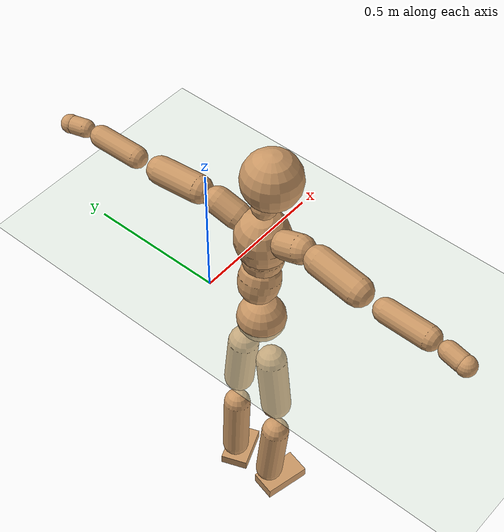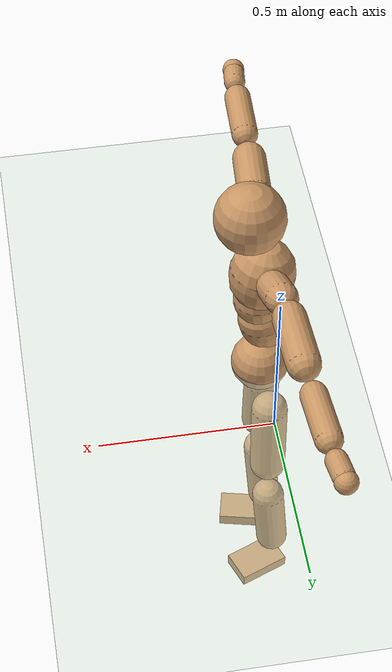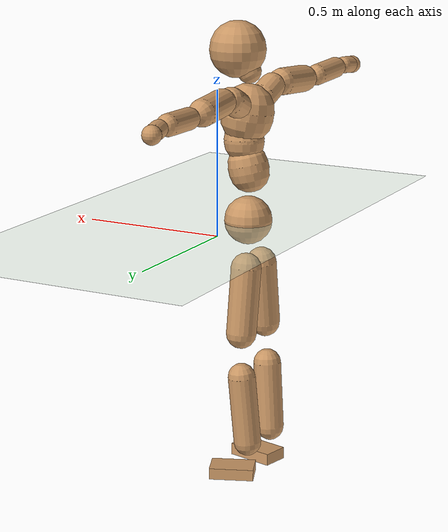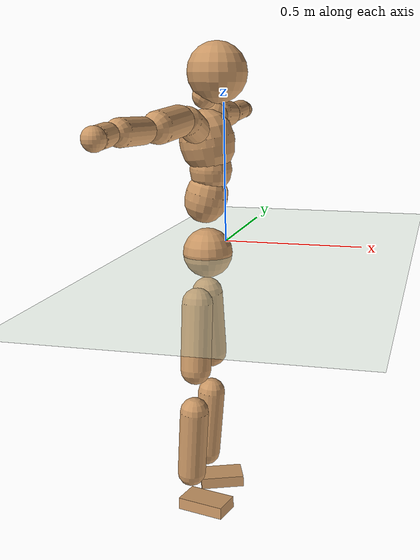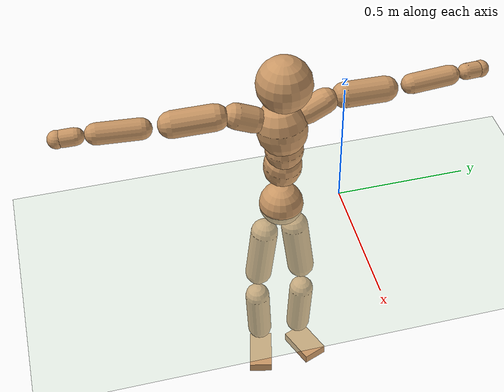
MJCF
<mujoco model="humanoid">
  <compiler coordinate="local" angle="radian"/>
  <default>
    <joint damping="0.0" armature="0.01" stiffness="0.0" limited="true"/>
    <geom conaffinity="1" condim="3" contype="7" margin="0.001" rgba="0.8 0.6 .4 1"/>
  </default>
  <asset>
    <texture type="skybox" builtin="gradient" rgb1=".4 .5 .6" rgb2="0 0 0" width="100" height="100"/>
    <texture builtin="flat" height="1278" mark="cross" markrgb="1 1 1" name="texgeom" random="0.01" rgb1="0.8 0.6 0.4" rgb2="0.8 0.6 0.4" type="cube" width="127"/>
    <texture builtin="checker" height="100" name="texplane" rgb1="0 0 0" rgb2="0.8 0.8 0.8" type="2d" width="100"/>
    <material name="MatPlane" reflectance="0.5" shininess="1" specular="1" texrepeat="60 60" texture="texplane"/>
    <material name="geom" texture="texgeom" texuniform="true"/>
  </asset>
  <worldbody>
    <light cutoff="100" diffuse="1 1 1" dir="-0 0 -1.3" directional="true" exponent="1" pos="0 0 1.3" specular=".1 .1 .1"/>
    <geom conaffinity="1" condim="3" name="floor" pos="0 0 0" rgba="0.8 0.9 0.8 1" size="100 100 .2" type="plane" material="MatPlane"/>
    <body name="Pelvis" pos="-0.0004 -0.2292 0.0064">
      <freejoint name="Pelvis"/>
      <geom type="sphere" contype="1" conaffinity="1" density="500" size="0.0848" pos="0.0000 0.0000 0.0000" name="Pelvis"/>
      <body name="L_Hip" pos="-0.0239 0.0505 -0.0798">
        <joint name="L_Hip_x" type="hinge" pos="0 0 0" axis="1 0 0" stiffness="800" damping="80" armature="0.02" range="-180.0000 180.0000"/>
        <joint name="L_Hip_y" type="hinge" pos="0 0 0" axis="0 1 0" stiffness="800" damping="80" armature="0.02" range="-180.0000 180.0000"/>
        <joint name="L_Hip_z" type="hinge" pos="0 0 0" axis="0 0 1" stiffness="800" damping="80" armature="0.02" range="-180.0000 180.0000"/>
        <geom type="capsule" contype="1" conaffinity="1" density="500" fromto="0.0015 0.0089 -0.0777 0.0058 0.0357 -0.3106" size="0.0537" name="L_Hip"/>
        <body name="L_Knee" pos="0.0073 0.0447 -0.3883">
          <joint name="L_Knee_x" type="hinge" pos="0 0 0" axis="1 0 0" stiffness="800" damping="80" armature="0.02" range="-180.0000 180.0000"/>
          <joint name="L_Knee_y" type="hinge" pos="0 0 0" axis="0 1 0" stiffness="800" damping="80" armature="0.02" range="-180.0000 180.0000"/>
          <joint name="L_Knee_z" type="hinge" pos="0 0 0" axis="0 0 1" stiffness="800" damping="80" armature="0.02" range="-180.0000 180.0000"/>
          <geom type="capsule" contype="1" conaffinity="1" density="500" fromto="-0.0068 -0.0024 -0.0811 -0.0274 -0.0096 -0.3245" size="0.0491" name="L_Knee"/>
          <body name="L_Ankle" pos="-0.0342 -0.0119 -0.4056">
            <joint name="L_Ankle_x" type="hinge" pos="0 0 0" axis="1 0 0" stiffness="800" damping="80" armature="0.02" range="-180.0000 180.0000"/>
            <joint name="L_Ankle_y" type="hinge" pos="0 0 0" axis="0 1 0" stiffness="800" damping="80" armature="0.02" range="-180.0000 180.0000"/>
            <joint name="L_Ankle_z" type="hinge" pos="0 0 0" axis="0 0 1" stiffness="800" damping="80" armature="0.02" range="-180.0000 180.0000"/>
            <geom type="box" contype="1" conaffinity="1" density="500" pos="0.0568 0.0222 -0.0288" size="0.0788 0.0503 0.0202" quat="0.9827 0.0000 0.0000 0.1854" name="L_Ankle"/>
            <body name="L_Toe" pos="0.1137 0.0445 -0.0577">
              <joint name="L_Toe_x" type="hinge" pos="0 0 0" axis="1 0 0" stiffness="500" damping="50" armature="0.02" range="-180.0000 180.0000"/>
              <joint name="L_Toe_y" type="hinge" pos="0 0 0" axis="0 1 0" stiffness="500" damping="50" armature="0.02" range="-180.0000 180.0000"/>
              <joint name="L_Toe_z" type="hinge" pos="0 0 0" axis="0 0 1" stiffness="500" damping="50" armature="0.02" range="-180.0000 180.0000"/>
              <geom type="box" contype="1" conaffinity="1" density="500" pos="0.0000 0.0000 0.0302" size="0.001 0.0024 0.0011" quat="0.9818 0.0000 0.0000 0.1899" name="L_Toe"/>
            </body>
          </body>
        </body>
      </body>
      <body name="R_Hip" pos="-0.0206 -0.0532 -0.0884">
        <joint name="R_Hip_x" type="hinge" pos="0 0 0" axis="1 0 0" stiffness="800" damping="80" armature="0.02" range="-180.0000 180.0000"/>
        <joint name="R_Hip_y" type="hinge" pos="0 0 0" axis="0 1 0" stiffness="800" damping="80" armature="0.02" range="-180.0000 180.0000"/>
        <joint name="R_Hip_z" type="hinge" pos="0 0 0" axis="0 0 1" stiffness="800" damping="80" armature="0.02" range="-180.0000 180.0000"/>
        <geom type="capsule" contype="1" conaffinity="1" density="500" fromto="-0.0008 -0.0092 -0.0764 -0.0033 -0.0367 -0.3058" size="0.0532" name="R_Hip"/>
        <body name="R_Knee" pos="-0.0041 -0.0458 -0.3822">
          <joint name="R_Knee_x" type="hinge" pos="0 0 0" axis="1 0 0" stiffness="800" damping="80" armature="0.02" range="-180.0000 180.0000"/>
          <joint name="R_Knee_y" type="hinge" pos="0 0 0" axis="0 1 0" stiffness="800" damping="80" armature="0.02" range="-180.0000 180.0000"/>
          <joint name="R_Knee_z" type="hinge" pos="0 0 0" axis="0 0 1" stiffness="800" damping="80" armature="0.02" range="-180.0000 180.0000"/>
          <geom type="capsule" contype="1" conaffinity="1" density="500" fromto="-0.0061 0.0035 -0.0800 -0.0246 0.0142 -0.3200" size="0.0498" name="R_Knee"/>
          <body name="R_Ankle" pos="-0.0307 0.0177 -0.4">
            <joint name="R_Ankle_x" type="hinge" pos="0 0 0" axis="1 0 0" stiffness="800" damping="80" armature="0.02" range="-180.0000 180.0000"/>
            <joint name="R_Ankle_y" type="hinge" pos="0 0 0" axis="0 1 0" stiffness="800" damping="80" armature="0.02" range="-180.0000 180.0000"/>
            <joint name="R_Ankle_z" type="hinge" pos="0 0 0" axis="0 0 1" stiffness="800" damping="80" armature="0.02" range="-180.0000 180.0000"/>
            <geom type="box" contype="1" conaffinity="1" density="500" pos="0.0612 -0.0142 -0.0310" size="0.0854 0.0474 0.0212" quat="0.9935 0.0000 0.0000 -0.1138" name="R_Ankle"/>
            <body name="R_Toe" pos="0.1223 -0.0284 -0.062">
              <joint name="R_Toe_x" type="hinge" pos="0 0 0" axis="1 0 0" stiffness="500" damping="50" armature="0.02" range="-180.0000 180.0000"/>
              <joint name="R_Toe_y" type="hinge" pos="0 0 0" axis="0 1 0" stiffness="500" damping="50" armature="0.02" range="-180.0000 180.0000"/>
              <joint name="R_Toe_z" type="hinge" pos="0 0 0" axis="0 0 1" stiffness="500" damping="50" armature="0.02" range="-180.0000 180.0000"/>
              <geom type="box" contype="1" conaffinity="1" density="500" pos="0.0000 0.0000 0.0331" size="0.0009 0.0023 0.0012" quat="0.9945 0.0000 0.0000 -0.1044" name="R_Toe"/>
            </body>
          </body>
        </body>
      </body>
      <body name="Torso" pos="-0.0205 0.0043 0.1185">
        <joint name="Torso_x" type="hinge" pos="0 0 0" axis="1 0 0" stiffness="1000" damping="100" armature="0.02" range="-180.0000 180.0000"/>
        <joint name="Torso_y" type="hinge" pos="0 0 0" axis="0 1 0" stiffness="1000" damping="100" armature="0.02" range="-180.0000 180.0000"/>
        <joint name="Torso_z" type="hinge" pos="0 0 0" axis="0 0 1" stiffness="1000" damping="100" armature="0.02" range="-180.0000 180.0000"/>
        <geom type="capsule" contype="1" conaffinity="1" density="500" fromto="0.0199 0.0027 0.0825 0.0133 0.0018 0.0550" size="0.0712" name="Torso"/>
        <body name="Spine" pos="0.0332 0.0045 0.1375">
          <joint name="Spine_x" type="hinge" pos="0 0 0" axis="1 0 0" stiffness="1000" damping="100" armature="0.02" range="-180.0000 180.0000"/>
          <joint name="Spine_y" type="hinge" pos="0 0 0" axis="0 1 0" stiffness="1000" damping="100" armature="0.02" range="-180.0000 180.0000"/>
          <joint name="Spine_z" type="hinge" pos="0 0 0" axis="0 0 1" stiffness="1000" damping="100" armature="0.02" range="-180.0000 180.0000"/>
          <geom type="capsule" contype="1" conaffinity="1" density="500" fromto="0.0011 -0.0014 0.0326 0.0007 -0.0010 0.0217" size="0.0707" name="Spine"/>
          <body name="Chest" pos="0.0018 -0.0024 0.0543">
            <joint name="Chest_x" type="hinge" pos="0 0 0" axis="1 0 0" stiffness="1000" damping="100" armature="0.02" range="-180.0000 180.0000"/>
            <joint name="Chest_y" type="hinge" pos="0 0 0" axis="0 1 0" stiffness="1000" damping="100" armature="0.02" range="-180.0000 180.0000"/>
            <joint name="Chest_z" type="hinge" pos="0 0 0" axis="0 0 1" stiffness="1000" damping="100" armature="0.02" range="-180.0000 180.0000"/>
            <geom type="capsule" contype="1" conaffinity="1" density="500" fromto="-0.0124 -0.0055 0.0805 -0.0083 -0.0036 0.0536" size="0.092" name="Chest"/>
            <body name="Neck" pos="-0.0233 -0.014 0.1942">
              <joint name="Neck_x" type="hinge" pos="0 0 0" axis="1 0 0" stiffness="500" damping="50" armature="0.02" range="-180.0000 180.0000"/>
              <joint name="Neck_y" type="hinge" pos="0 0 0" axis="0 1 0" stiffness="500" damping="50" armature="0.02" range="-180.0000 180.0000"/>
              <joint name="Neck_z" type="hinge" pos="0 0 0" axis="0 0 1" stiffness="500" damping="50" armature="0.02" range="-180.0000 180.0000"/>
              <geom type="capsule" contype="1" conaffinity="1" density="500" fromto="0.0103 0.0016 0.0186 0.0411 0.0065 0.0745" size="0.0422" name="Neck"/>
              <body name="Head" pos="0.0513 0.0082 0.0931">
                <joint name="Head_x" type="hinge" pos="0 0 0" axis="1 0 0" stiffness="500" damping="50" armature="0.02" range="-180.0000 180.0000"/>
                <joint name="Head_y" type="hinge" pos="0 0 0" axis="0 1 0" stiffness="500" damping="50" armature="0.02" range="-180.0000 180.0000"/>
                <joint name="Head_z" type="hinge" pos="0 0 0" axis="0 0 1" stiffness="500" damping="50" armature="0.02" range="-180.0000 180.0000"/>
                <geom type="sphere" contype="1" conaffinity="1" density="500" size="0.0992" pos="0.0000 0.0000 0.0000" name="Head"/>
              </body>
            </body>
            <body name="L_Thorax" pos="-0.0184 0.067 0.1039">
              <joint name="L_Thorax_x" type="hinge" pos="0 0 0" axis="1 0 0" stiffness="500" damping="50" armature="0.02" range="-180.0000 180.0000"/>
              <joint name="L_Thorax_y" type="hinge" pos="0 0 0" axis="0 1 0" stiffness="500" damping="50" armature="0.02" range="-180.0000 180.0000"/>
              <joint name="L_Thorax_z" type="hinge" pos="0 0 0" axis="0 0 1" stiffness="500" damping="50" armature="0.02" range="-180.0000 180.0000"/>
              <geom type="capsule" contype="1" conaffinity="1" density="500" fromto="-0.0031 0.0225 0.0089 -0.0123 0.0899 0.0354" size="0.0463" name="L_Thorax"/>
              <body name="L_Shoulder" pos="-0.0154 0.1124 0.0443">
                <joint name="L_Shoulder_x" type="hinge" pos="0 0 0" axis="1 0 0" stiffness="500" damping="50" armature="0.02" range="-720.0000 720.0000"/>
                <joint name="L_Shoulder_y" type="hinge" pos="0 0 0" axis="0 1 0" stiffness="500" damping="50" armature="0.02" range="-720.0000 720.0000"/>
                <joint name="L_Shoulder_z" type="hinge" pos="0 0 0" axis="0 0 1" stiffness="500" damping="50" armature="0.02" range="-720.0000 720.0000"/>
                <geom type="capsule" contype="1" conaffinity="1" density="500" fromto="-0.0027 0.0510 -0.0032 -0.0109 0.2039 -0.0128" size="0.0467" name="L_Shoulder"/>
                <body name="L_Elbow" pos="-0.0137 0.2548 -0.016">
                  <joint name="L_Elbow_x" type="hinge" pos="0 0 0" axis="1 0 0" stiffness="500" damping="50" armature="0.02" range="-720.0000 720.0000"/>
                  <joint name="L_Elbow_y" type="hinge" pos="0 0 0" axis="0 1 0" stiffness="500" damping="50" armature="0.02" range="-720.0000 720.0000"/>
                  <joint name="L_Elbow_z" type="hinge" pos="0 0 0" axis="0 0 1" stiffness="500" damping="50" armature="0.02" range="-720.0000 720.0000"/>
                  <geom type="capsule" contype="1" conaffinity="1" density="500" fromto="-0.0025 0.0494 0.0017 -0.0099 0.1974 0.0067" size="0.0369" name="L_Elbow"/>
                  <body name="L_Wrist" pos="-0.0123 0.2468 0.0084">
                    <joint name="L_Wrist_x" type="hinge" pos="0 0 0" axis="1 0 0" stiffness="300" damping="30" armature="0.02" range="-180.0000 180.0000"/>
                    <joint name="L_Wrist_y" type="hinge" pos="0 0 0" axis="0 1 0" stiffness="300" damping="30" armature="0.02" range="-180.0000 180.0000"/>
                    <joint name="L_Wrist_z" type="hinge" pos="0 0 0" axis="0 0 1" stiffness="300" damping="30" armature="0.02" range="-180.0000 180.0000"/>
                    <geom type="capsule" contype="1" conaffinity="1" density="500" fromto="-0.0028 0.0153 -0.0018 -0.0111 0.0614 -0.0073" size="0.0302" name="L_Wrist"/>
                    <body name="L_Hand" pos="-0.0139 0.0767 -0.0092">
                      <joint name="L_Hand_x" type="hinge" pos="0 0 0" axis="1 0 0" stiffness="300" damping="30" armature="0.02" range="-180.0000 180.0000"/>
                      <joint name="L_Hand_y" type="hinge" pos="0 0 0" axis="0 1 0" stiffness="300" damping="30" armature="0.02" range="-180.0000 180.0000"/>
                      <joint name="L_Hand_z" type="hinge" pos="0 0 0" axis="0 0 1" stiffness="300" damping="30" armature="0.02" range="-180.0000 180.0000"/>
                      <geom type="sphere" contype="1" conaffinity="1" density="500" size="0.0316" pos="0.0000 0.0000 0.0000" name="L_Hand"/>
                    </body>
                  </body>
                </body>
              </body>
            </body>
            <body name="R_Thorax" pos="-0.0203 -0.0803 0.1042">
              <joint name="R_Thorax_x" type="hinge" pos="0 0 0" axis="1 0 0" stiffness="500" damping="50" armature="0.02" range="-180.0000 180.0000"/>
              <joint name="R_Thorax_y" type="hinge" pos="0 0 0" axis="0 1 0" stiffness="500" damping="50" armature="0.02" range="-180.0000 180.0000"/>
              <joint name="R_Thorax_z" type="hinge" pos="0 0 0" axis="0 0 1" stiffness="500" damping="50" armature="0.02" range="-180.0000 180.0000"/>
              <geom type="capsule" contype="1" conaffinity="1" density="500" fromto="-0.0010 -0.0209 0.0090 -0.0040 -0.0837 0.0361" size="0.047" name="R_Thorax"/>
              <body name="R_Shoulder" pos="-0.005 -0.1046 0.0451">
                <joint name="R_Shoulder_x" type="hinge" pos="0 0 0" axis="1 0 0" stiffness="500" damping="50" armature="0.02" range="-720.0000 720.0000"/>
                <joint name="R_Shoulder_y" type="hinge" pos="0 0 0" axis="0 1 0" stiffness="500" damping="50" armature="0.02" range="-720.0000 720.0000"/>
                <joint name="R_Shoulder_z" type="hinge" pos="0 0 0" axis="0 0 1" stiffness="500" damping="50" armature="0.02" range="-720.0000 720.0000"/>
                <geom type="capsule" contype="1" conaffinity="1" density="500" fromto="-0.0040 -0.0507 -0.0033 -0.0162 -0.2028 -0.0132" size="0.0486" name="R_Shoulder"/>
                <body name="R_Elbow" pos="-0.0202 -0.2535 -0.0165">
                  <joint name="R_Elbow_x" type="hinge" pos="0 0 0" axis="1 0 0" stiffness="500" damping="50" armature="0.02" range="-720.0000 720.0000"/>
                  <joint name="R_Elbow_y" type="hinge" pos="0 0 0" axis="0 1 0" stiffness="500" damping="50" armature="0.02" range="-720.0000 720.0000"/>
                  <joint name="R_Elbow_z" type="hinge" pos="0 0 0" axis="0 0 1" stiffness="500" damping="50" armature="0.02" range="-720.0000 720.0000"/>
                  <geom type="capsule" contype="1" conaffinity="1" density="500" fromto="-0.0017 -0.0515 0.0020 -0.0069 -0.2058 0.0080" size="0.0385" name="R_Elbow"/>
                  <body name="R_Wrist" pos="-0.0086 -0.2573 0.01">
                    <joint name="R_Wrist_x" type="hinge" pos="0 0 0" axis="1 0 0" stiffness="300" damping="30" armature="0.02" range="-180.0000 180.0000"/>
                    <joint name="R_Wrist_y" type="hinge" pos="0 0 0" axis="0 1 0" stiffness="300" damping="30" armature="0.02" range="-180.0000 180.0000"/>
                    <joint name="R_Wrist_z" type="hinge" pos="0 0 0" axis="0 0 1" stiffness="300" damping="30" armature="0.02" range="-180.0000 180.0000"/>
                    <geom type="capsule" contype="1" conaffinity="1" density="500" fromto="-0.0018 -0.0160 -0.0015 -0.0073 -0.0638 -0.0059" size="0.0313" name="R_Wrist"/>
                    <body name="R_Hand" pos="-0.0091 -0.0798 -0.0074">
                      <joint name="R_Hand_x" type="hinge" pos="0 0 0" axis="1 0 0" stiffness="300" damping="30" armature="0.02" range="-180.0000 180.0000"/>
                      <joint name="R_Hand_y" type="hinge" pos="0 0 0" axis="0 1 0" stiffness="300" damping="30" armature="0.02" range="-180.0000 180.0000"/>
                      <joint name="R_Hand_z" type="hinge" pos="0 0 0" axis="0 0 1" stiffness="300" damping="30" armature="0.02" range="-180.0000 180.0000"/>
                      <geom type="sphere" contype="1" conaffinity="1" density="500" size="0.0325" pos="0.0000 0.0000 0.0000" name="R_Hand"/>
                    </body>
                  </body>
                </body>
              </body>
            </body>
          </body>
        </body>
      </body>
    </body>
  </worldbody>
  <actuator>
    <motor name="L_Hip_x" joint="L_Hip_x" gear="500"/>
    <motor name="L_Hip_y" joint="L_Hip_y" gear="500"/>
    <motor name="L_Hip_z" joint="L_Hip_z" gear="500"/>
    <motor name="L_Knee_x" joint="L_Knee_x" gear="500"/>
    <motor name="L_Knee_y" joint="L_Knee_y" gear="500"/>
    <motor name="L_Knee_z" joint="L_Knee_z" gear="500"/>
    <motor name="L_Ankle_x" joint="L_Ankle_x" gear="500"/>
    <motor name="L_Ankle_y" joint="L_Ankle_y" gear="500"/>
    <motor name="L_Ankle_z" joint="L_Ankle_z" gear="500"/>
    <motor name="L_Toe_x" joint="L_Toe_x" gear="500"/>
    <motor name="L_Toe_y" joint="L_Toe_y" gear="500"/>
    <motor name="L_Toe_z" joint="L_Toe_z" gear="500"/>
    <motor name="R_Hip_x" joint="R_Hip_x" gear="500"/>
    <motor name="R_Hip_y" joint="R_Hip_y" gear="500"/>
    <motor name="R_Hip_z" joint="R_Hip_z" gear="500"/>
    <motor name="R_Knee_x" joint="R_Knee_x" gear="500"/>
    <motor name="R_Knee_y" joint="R_Knee_y" gear="500"/>
    <motor name="R_Knee_z" joint="R_Knee_z" gear="500"/>
    <motor name="R_Ankle_x" joint="R_Ankle_x" gear="500"/>
    <motor name="R_Ankle_y" joint="R_Ankle_y" gear="500"/>
    <motor name="R_Ankle_z" joint="R_Ankle_z" gear="500"/>
    <motor name="R_Toe_x" joint="R_Toe_x" gear="500"/>
    <motor name="R_Toe_y" joint="R_Toe_y" gear="500"/>
    <motor name="R_Toe_z" joint="R_Toe_z" gear="500"/>
    <motor name="Torso_x" joint="Torso_x" gear="500"/>
    <motor name="Torso_y" joint="Torso_y" gear="500"/>
    <motor name="Torso_z" joint="Torso_z" gear="500"/>
    <motor name="Spine_x" joint="Spine_x" gear="500"/>
    <motor name="Spine_y" joint="Spine_y" gear="500"/>
    <motor name="Spine_z" joint="Spine_z" gear="500"/>
    <motor name="Chest_x" joint="Chest_x" gear="500"/>
    <motor name="Chest_y" joint="Chest_y" gear="500"/>
    <motor name="Chest_z" joint="Chest_z" gear="500"/>
    <motor name="Neck_x" joint="Neck_x" gear="500"/>
    <motor name="Neck_y" joint="Neck_y" gear="500"/>
    <motor name="Neck_z" joint="Neck_z" gear="500"/>
    <motor name="Head_x" joint="Head_x" gear="500"/>
    <motor name="Head_y" joint="Head_y" gear="500"/>
    <motor name="Head_z" joint="Head_z" gear="500"/>
    <motor name="L_Thorax_x" joint="L_Thorax_x" gear="500"/>
    <motor name="L_Thorax_y" joint="L_Thorax_y" gear="500"/>
    <motor name="L_Thorax_z" joint="L_Thorax_z" gear="500"/>
    <motor name="L_Shoulder_x" joint="L_Shoulder_x" gear="500"/>
    <motor name="L_Shoulder_y" joint="L_Shoulder_y" gear="500"/>
    <motor name="L_Shoulder_z" joint="L_Shoulder_z" gear="500"/>
    <motor name="L_Elbow_x" joint="L_Elbow_x" gear="500"/>
    <motor name="L_Elbow_y" joint="L_Elbow_y" gear="500"/>
    <motor name="L_Elbow_z" joint="L_Elbow_z" gear="500"/>
    <motor name="L_Wrist_x" joint="L_Wrist_x" gear="500"/>
    <motor name="L_Wrist_y" joint="L_Wrist_y" gear="500"/>
    <motor name="L_Wrist_z" joint="L_Wrist_z" gear="500"/>
    <motor name="L_Hand_x" joint="L_Hand_x" gear="500"/>
    <motor name="L_Hand_y" joint="L_Hand_y" gear="500"/>
    <motor name="L_Hand_z" joint="L_Hand_z" gear="500"/>
    <motor name="R_Thorax_x" joint="R_Thorax_x" gear="500"/>
    <motor name="R_Thorax_y" joint="R_Thorax_y" gear="500"/>
    <motor name="R_Thorax_z" joint="R_Thorax_z" gear="500"/>
    <motor name="R_Shoulder_x" joint="R_Shoulder_x" gear="500"/>
    <motor name="R_Shoulder_y" joint="R_Shoulder_y" gear="500"/>
    <motor name="R_Shoulder_z" joint="R_Shoulder_z" gear="500"/>
    <motor name="R_Elbow_x" joint="R_Elbow_x" gear="500"/>
    <motor name="R_Elbow_y" joint="R_Elbow_y" gear="500"/>
    <motor name="R_Elbow_z" joint="R_Elbow_z" gear="500"/>
    <motor name="R_Wrist_x" joint="R_Wrist_x" gear="500"/>
    <motor name="R_Wrist_y" joint="R_Wrist_y" gear="500"/>
    <motor name="R_Wrist_z" joint="R_Wrist_z" gear="500"/>
    <motor name="R_Hand_x" joint="R_Hand_x" gear="500"/>
    <motor name="R_Hand_y" joint="R_Hand_y" gear="500"/>
    <motor name="R_Hand_z" joint="R_Hand_z" gear="500"/>
  </actuator>
  <contact>
    <exclude body1="Torso" body2="Chest"/>
    <exclude body1="Head" body2="Chest"/>
    <exclude body1="R_Knee" body2="R_Toe"/>
    <exclude body1="R_Knee" body2="L_Ankle"/>
    <exclude body1="R_Knee" body2="L_Toe"/>
    <exclude body1="L_Knee" body2="L_Toe"/>
    <exclude body1="L_Knee" body2="R_Ankle"/>
    <exclude body1="L_Knee" body2="R_Toe"/>
    <exclude body1="L_Shoulder" body2="Chest"/>
    <exclude body1="R_Shoulder" body2="Chest"/>
  </contact>
  <sensor/>
  <size njmax="700" nconmax="700"/>
</mujoco>
